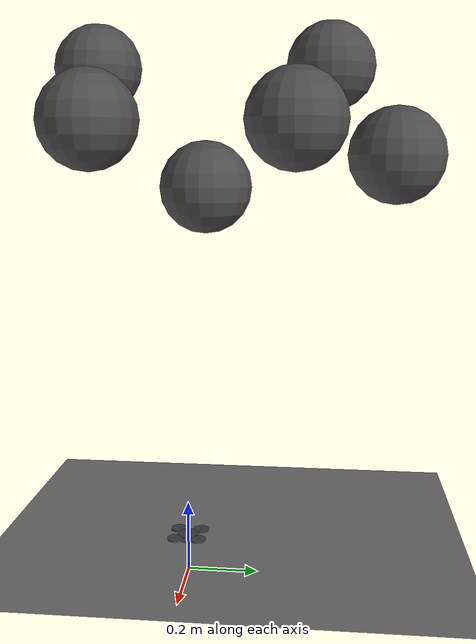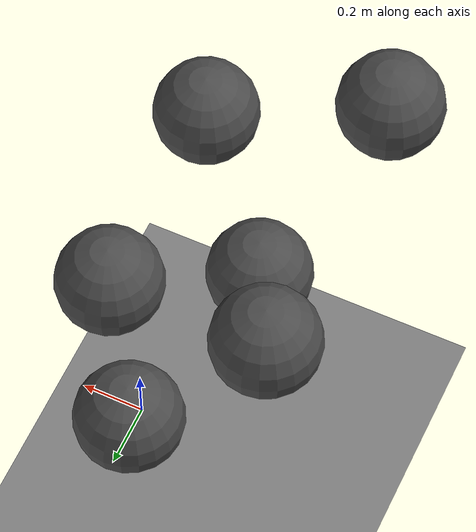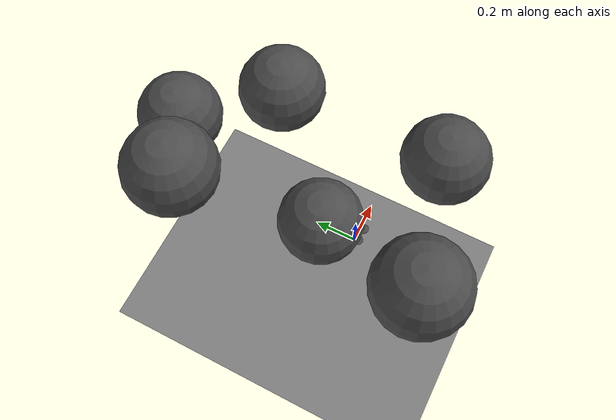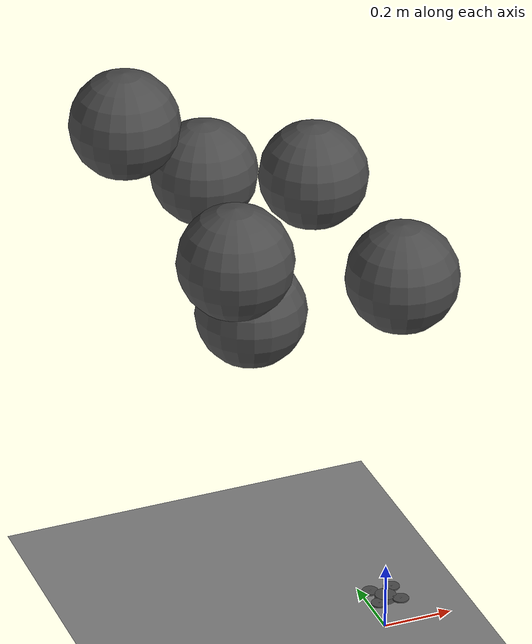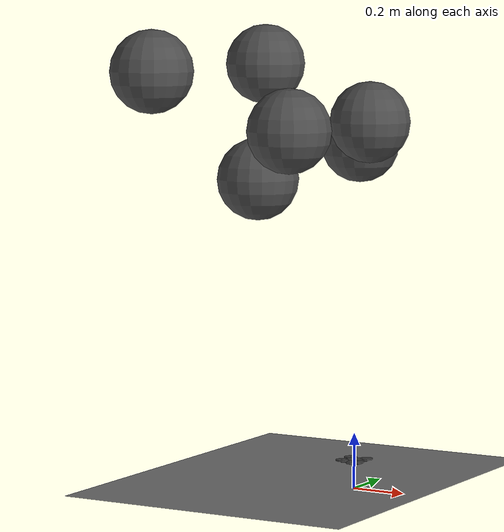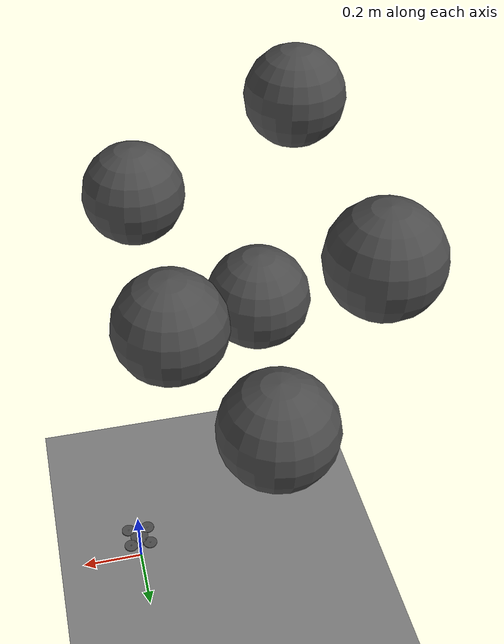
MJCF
<mujoco model="quadrotor_forest">
  <compiler angle="radian" autolimits="true"/>
  <option gravity="0 0 -9.81" timestep="0.002"/>
  <default>
    <joint damping="0.0005"/>
    <geom rgba="0.3 0.3 0.3 1"/>
  </default>
  <asset>
    <material name="body_mat"     rgba="0.2 0.2 0.8 1"/>
    <material name="rotor_mat"    rgba="0.8 0.2 0.2 1"/>
    <material name="arm_mat"      rgba="0.15 0.15 0.15 1"/>
    <material name="obstacle_mat" rgba="0.9 0.2 0.2 0.6"/>
  </asset>
  <worldbody>
    <light pos="0 0 5" dir="0 0 -1" diffuse="1 1 1"/>
    <light pos="1 1 3" dir="-1 -1 -2" diffuse="0.5 0.5 0.5"/>
    <!-- group=0: ground/drone excluded from LiDAR -->
    <geom name="ground" type="plane" size="10 10 0.1"
          rgba="0.5 0.5 0.5 1" condim="3" group="0"/>
    <!-- group=1: obstacles detected by LiDAR -->
    <geom name="obs1" type="sphere" size="0.15"
          pos="-0.10 0.30 1.30"
          material="obstacle_mat" condim="3" group="1"/>
    <geom name="obs2" type="sphere" size="0.15"
          pos="-0.10 -0.30 1.30"
          material="obstacle_mat" condim="3" group="1"/>
    <geom name="obs3" type="sphere" size="0.15"
          pos="-0.40 0.00 1.10"
          material="obstacle_mat" condim="3" group="1"/>
    <geom name="obs4" type="sphere" size="0.15"
          pos="-0.60 0.40 1.50"
          material="obstacle_mat" condim="3" group="1"/>
    <geom name="obs5" type="sphere" size="0.15"
          pos="-0.60 -0.40 1.50"
          material="obstacle_mat" condim="3" group="1"/>
    <geom name="obs6" type="sphere" size="0.15"
          pos="-0.30 0.60 1.20"
          material="obstacle_mat" condim="3" group="1"/>
    <!-- Quadrotor body — group=0 -->
    <body name="quadrotor" pos="0 0 0.1">
      <freejoint name="root"/>
      <geom name="hub" type="cylinder" size="0.03 0.008"
            material="body_mat" mass="0.027" condim="3" group="0"/>
      <site name="imu" pos="0 0 0" size="0.005"/>
      <geom name="arm1" type="capsule" fromto="0 0 0  0.0325 0.0325 0"
            size="0.004" material="arm_mat" mass="0.002" group="0"/>
      <geom name="arm2" type="capsule" fromto="0 0 0  0.0325 -0.0325 0"
            size="0.004" material="arm_mat" mass="0.002" group="0"/>
      <geom name="arm3" type="capsule" fromto="0 0 0  -0.0325 -0.0325 0"
            size="0.004" material="arm_mat" mass="0.002" group="0"/>
      <geom name="arm4" type="capsule" fromto="0 0 0  -0.0325 0.0325 0"
            size="0.004" material="arm_mat" mass="0.002" group="0"/>
      <geom name="rotor1" type="cylinder" size="0.023 0.002"
            pos=" 0.0325  0.0325 0.006" material="rotor_mat" mass="0.001" group="0"/>
      <geom name="rotor2" type="cylinder" size="0.023 0.002"
            pos=" 0.0325 -0.0325 0.006" material="rotor_mat" mass="0.001" group="0"/>
      <geom name="rotor3" type="cylinder" size="0.023 0.002"
            pos="-0.0325 -0.0325 0.006" material="rotor_mat" mass="0.001" group="0"/>
      <geom name="rotor4" type="cylinder" size="0.023 0.002"
            pos="-0.0325  0.0325 0.006" material="rotor_mat" mass="0.001" group="0"/>
      <site name="rotor1_site" pos=" 0.0325  0.0325 0.006" size="0.003"/>
      <site name="rotor2_site" pos=" 0.0325 -0.0325 0.006" size="0.003"/>
      <site name="rotor3_site" pos="-0.0325 -0.0325 0.006" size="0.003"/>
      <site name="rotor4_site" pos="-0.0325  0.0325 0.006" size="0.003"/>
    </body>
  </worldbody>
  <actuator>
    <general name="rotor1" site="rotor1_site" gear="0 0 1 0 0 0" ctrllimited="true" ctrlrange="0 0.15"/>
    <general name="rotor2" site="rotor2_site" gear="0 0 1 0 0 0" ctrllimited="true" ctrlrange="0 0.15"/>
    <general name="rotor3" site="rotor3_site" gear="0 0 1 0 0 0" ctrllimited="true" ctrlrange="0 0.15"/>
    <general name="rotor4" site="rotor4_site" gear="0 0 1 0 0 0" ctrllimited="true" ctrlrange="0 0.15"/>
  </actuator>
  <sensor>
    <accelerometer name="accel" site="imu"/>
    <gyro          name="gyro"  site="imu"/>
  </sensor>
</mujoco>
